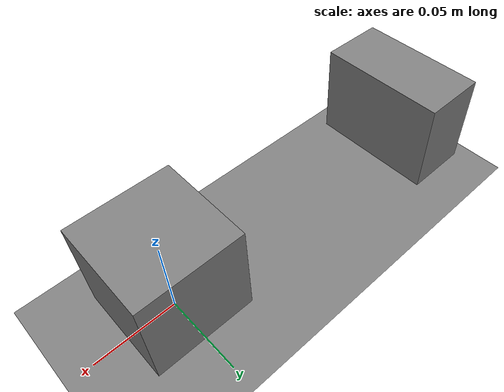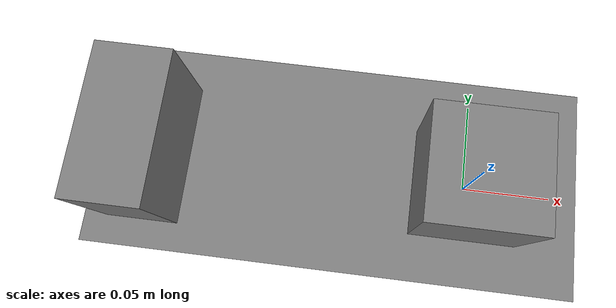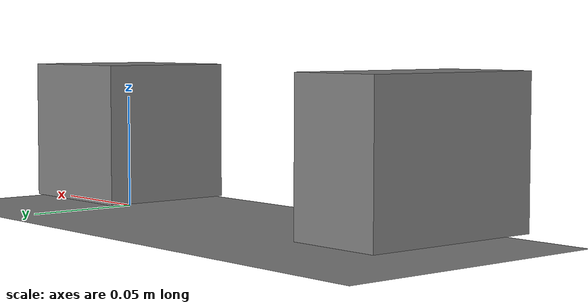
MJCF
<mujoco model="sim005_generic_manipulation_proxy">
  <option timestep="0.002" gravity="0 0 -9.81"/>
  <default><geom friction="1.2 0.02 0.001" density="800"/></default>
  <worldbody>
    <geom name="table" type="plane" size="1 1 0.1"/>
    <body name="generic_pusher" pos="-0.18 0 0.035">
      <joint name="pusher_slide" type="slide" axis="1 0 0" range="0 0.30" limited="true"/>
      <geom type="box" size="0.02 0.04 0.03" mass="0.2"/>
    </body>
    <body name="workpiece" pos="0 0 0.035">
      <freejoint/>
      <geom type="box" size="0.03 0.03 0.03" mass="0.08"/>
    </body>
  </worldbody>
  <actuator><position joint="pusher_slide" kp="200" ctrlrange="0 0.30"/></actuator>
</mujoco>
